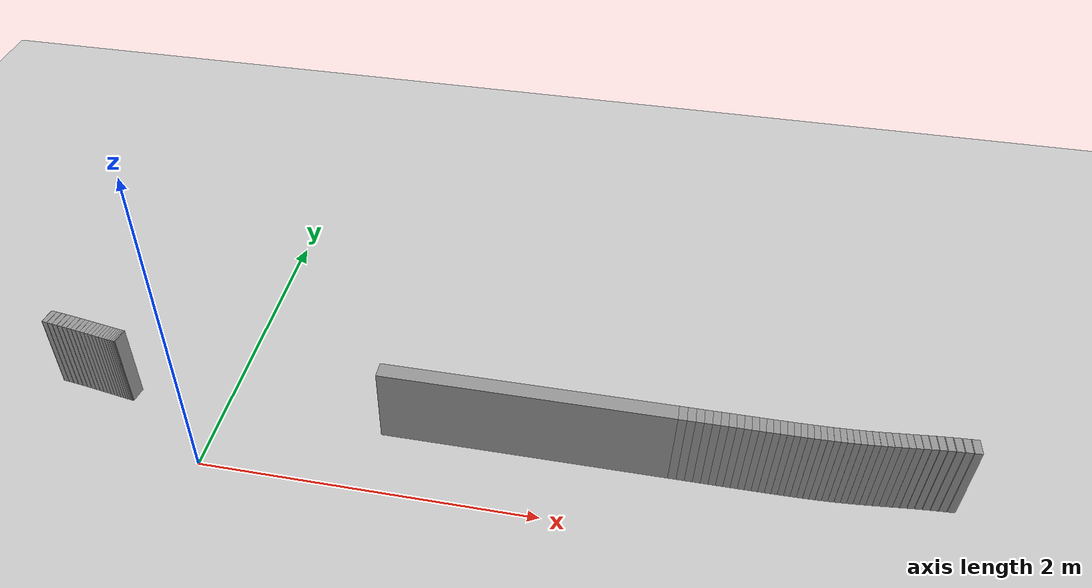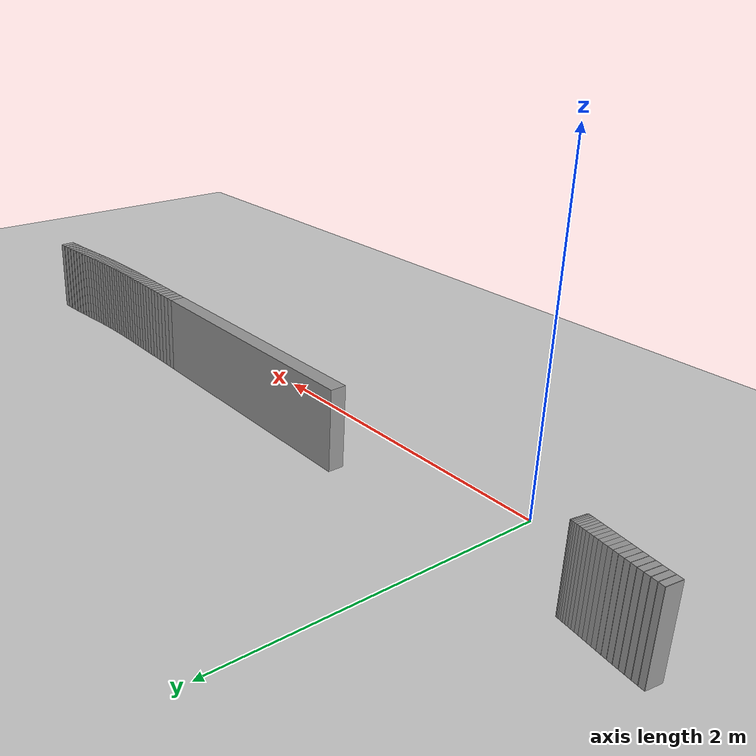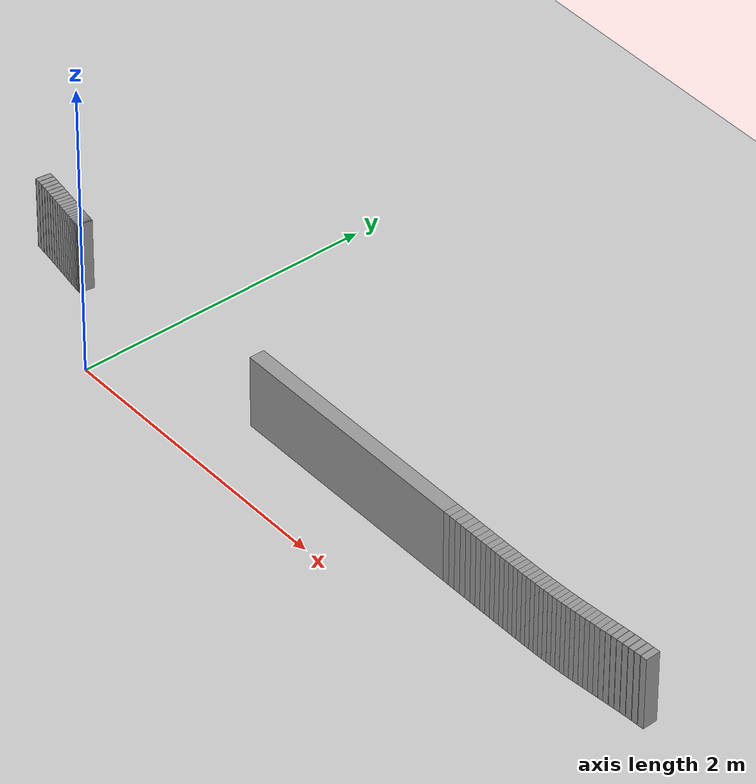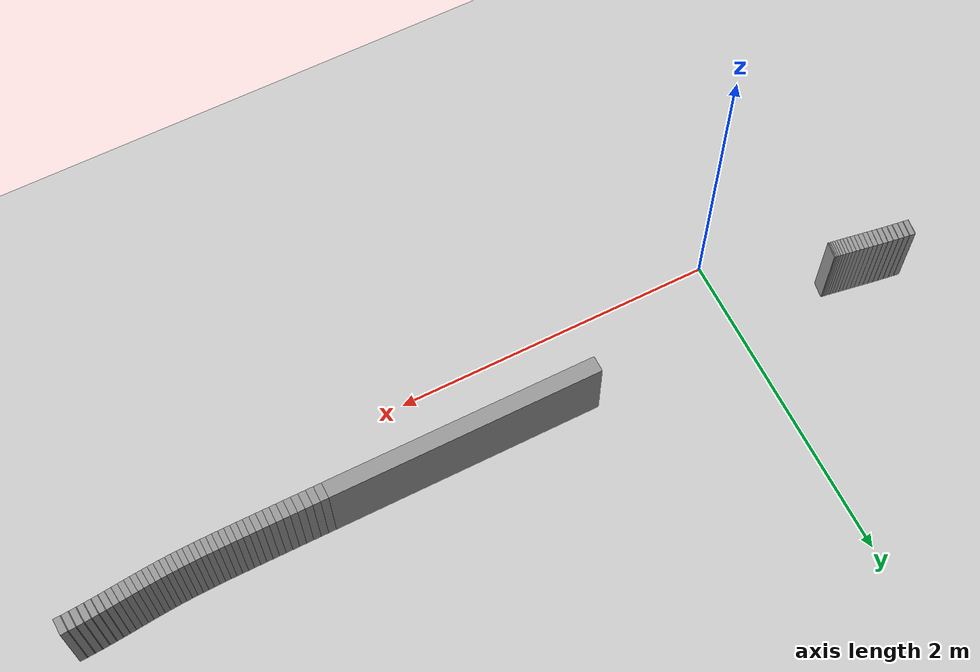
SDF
<sdf version="1.6">
 <world name="default">
  <include><uri>model://ground_plane</uri></include>
  <include><uri>model://sun</uri></include>
  <model name="wall_0_outward">
   <static>true</static>
   <link name="link">
    <collision name="collision">
     <geometry><box><size>1.6948364721734805 0.1 0.5</size></box></geometry>
    </collision>
    <visual name="visual">
     <geometry><box><size>1.6948364721734805 0.1 0.5</size></box></geometry>
     <material>
      <script><uri>file://media/materials/scripts/gazebo.material</uri><name>Gazebo/Gray</name></script>
     </material>
    </visual>
   </link>
   <pose>1.8243392985711648 0.475 0.25 0 0 0.0</pose>
  </model>
  <model name="wall_1_outward">
   <static>true</static>
   <link name="link">
    <collision name="collision">
     <geometry><box><size>0.04806440217080961 0.1 0.5</size></box></geometry>
    </collision>
    <visual name="visual">
     <geometry><box><size>0.04806440217080961 0.1 0.5</size></box></geometry>
     <material>
      <script><uri>file://media/materials/scripts/gazebo.material</uri><name>Gazebo/Gray</name></script>
     </material>
    </visual>
   </link>
   <pose>2.695789735742122 0.47500023897134025 0.25 0 0 9.943797465686413e-06</pose>
  </model>
  <model name="wall_2_outward">
   <static>true</static>
   <link name="link">
    <collision name="collision">
     <geometry><box><size>0.04688702898116273 0.1 0.5</size></box></geometry>
    </collision>
    <visual name="visual">
     <geometry><box><size>0.04688702898116273 0.1 0.5</size></box></geometry>
     <material>
      <script><uri>file://media/materials/scripts/gazebo.material</uri><name>Gazebo/Gray</name></script>
     </material>
    </visual>
   </link>
   <pose>2.743265451313178 0.4750008968067251 0.25 0 0 1.78669475849483e-05</pose>
  </model>
  <model name="wall_3_outward">
   <static>true</static>
   <link name="link">
    <collision name="collision">
     <geometry><box><size>0.04574440428487137 0.1 0.5</size></box></geometry>
    </collision>
    <visual name="visual">
     <geometry><box><size>0.04574440428487137 0.1 0.5</size></box></geometry>
     <material>
      <script><uri>file://media/materials/scripts/gazebo.material</uri><name>Gazebo/Gray</name></script>
     </material>
    </visual>
   </link>
   <pose>2.7895811679311424 0.4750020349709023 0.25 0 0 3.1448661056683624e-05</pose>
  </model>
  <model name="wall_4_outward">
   <static>true</static>
   <link name="link">
    <collision name="collision">
     <geometry><box><size>0.04463535169733621 0.1 0.5</size></box></geometry>
    </collision>
    <visual name="visual">
     <geometry><box><size>0.04463535169733621 0.1 0.5</size></box></geometry>
     <material>
      <script><uri>file://media/materials/scripts/gazebo.material</uri><name>Gazebo/Gray</name></script>
     </material>
    </visual>
   </link>
   <pose>2.834771045878127 0.4750039644063491 0.25 0 0 5.4223178207318726e-05</pose>
  </model>
  <model name="wall_5_outward">
   <static>true</static>
   <link name="link">
    <collision name="collision">
     <geometry><box><size>0.04356462694553616 0.1 0.5</size></box></geometry>
    </collision>
    <visual name="visual">
     <geometry><box><size>0.04356462694553616 0.1 0.5</size></box></geometry>
     <material>
      <script><uri>file://media/materials/scripts/gazebo.material</uri><name>Gazebo/Gray</name></script>
     </material>
    </visual>
   </link>
   <pose>2.8788710350522493 0.4750074080070009 0.25 0 0 0.00010253572671945705</pose>
  </model>
  <model name="wall_6_outward">
   <static>true</static>
   <link name="link">
    <collision name="collision">
     <geometry><box><size>0.04253340131051369 0.1 0.5</size></box></geometry>
    </collision>
    <visual name="visual">
     <geometry><box><size>0.04253340131051369 0.1 0.5</size></box></geometry>
     <material>
      <script><uri>file://media/materials/scripts/gazebo.material</uri><name>Gazebo/Gray</name></script>
     </material>
    </visual>
   </link>
   <pose>2.9219200487543553 0.47501328091075756 0.25 0 0 0.00017113319530774783</pose>
  </model>
  <model name="wall_7_outward">
   <static>true</static>
   <link name="link">
    <collision name="collision">
     <geometry><box><size>0.04153998504033929 0.1 0.5</size></box></geometry>
    </collision>
    <visual name="visual">
     <geometry><box><size>0.04153998504033929 0.1 0.5</size></box></geometry>
     <material>
      <script><uri>file://media/materials/scripts/gazebo.material</uri><name>Gazebo/Gray</name></script>
     </material>
    </visual>
   </link>
   <pose>2.963956740804873 0.47502273348463075 0.25 0 0 0.00027988144552377407</pose>
  </model>
  <model name="wall_8_outward">
   <static>true</static>
   <link name="link">
    <collision name="collision">
     <geometry><box><size>0.04058826902087327 0.1 0.5</size></box></geometry>
    </collision>
    <visual name="visual">
     <geometry><box><size>0.04058826902087327 0.1 0.5</size></box></geometry>
     <material>
      <script><uri>file://media/materials/scripts/gazebo.material</uri><name>Gazebo/Gray</name></script>
     </material>
    </visual>
   </link>
   <pose>3.0050208649814865 0.4750376471853254 0.25 0 0 0.0004484332919322523</pose>
  </model>
  <model name="wall_9_outward">
   <static>true</static>
   <link name="link">
    <collision name="collision">
     <geometry><box><size>0.03968564509313034 0.1 0.5</size></box></geometry>
    </collision>
    <visual name="visual">
     <geometry><box><size>0.03968564509313034 0.1 0.5</size></box></geometry>
     <material>
      <script><uri>file://media/materials/scripts/gazebo.material</uri><name>Gazebo/Gray</name></script>
     </material>
    </visual>
   </link>
   <pose>3.0451578149155183 0.475060949903339 0.25 0 0 0.0007157325502692343</pose>
  </model>
  <model name="wall_10_outward">
   <static>true</static>
   <link name="link">
    <collision name="collision">
     <geometry><box><size>0.038840450173505875 0.1 0.5</size></box></geometry>
    </collision>
    <visual name="visual">
     <geometry><box><size>0.038840450173505875 0.1 0.5</size></box></geometry>
     <material>
      <script><uri>file://media/materials/scripts/gazebo.material</uri><name>Gazebo/Gray</name></script>
     </material>
    </visual>
   </link>
   <pose>3.0844208456576423 0.475096568310334 0.25 0 0 0.0011027811710174141</pose>
  </model>
  <model name="wall_11_outward">
   <static>true</static>
   <link name="link">
    <collision name="collision">
     <geometry><box><size>0.038055004006341736 0.1 0.5</size></box></geometry>
    </collision>
    <visual name="visual">
     <geometry><box><size>0.038055004006341736 0.1 0.5</size></box></geometry>
     <material>
      <script><uri>file://media/materials/scripts/gazebo.material</uri><name>Gazebo/Gray</name></script>
     </material>
    </visual>
   </link>
   <pose>3.122868534603403 0.4751496420224396 0.25 0 0 0.0016637744925169177</pose>
  </model>
  <model name="wall_12_outward">
   <static>true</static>
   <link name="link">
    <collision name="collision">
     <geometry><box><size>0.037338345144804795 0.1 0.5</size></box></geometry>
    </collision>
    <visual name="visual">
     <geometry><box><size>0.037338345144804795 0.1 0.5</size></box></geometry>
     <material>
      <script><uri>file://media/materials/scripts/gazebo.material</uri><name>Gazebo/Gray</name></script>
     </material>
    </visual>
   </link>
   <pose>3.1605651264879793 0.47522717125795005 0.25 0 0 0.0024570892794366014</pose>
  </model>
  <model name="wall_13_outward">
   <static>true</static>
   <link name="link">
    <collision name="collision">
     <geometry><box><size>0.03669572196433584 0.1 0.5</size></box></geometry>
    </collision>
    <visual name="visual">
     <geometry><box><size>0.03669572196433584 0.1 0.5</size></box></geometry>
     <material>
      <script><uri>file://media/materials/scripts/gazebo.material</uri><name>Gazebo/Gray</name></script>
     </material>
    </visual>
   </link>
   <pose>3.197581988004242 0.47533819707425495 0.25 0 0 0.003551050210883896</pose>
  </model>
  <model name="wall_14_outward">
   <static>true</static>
   <link name="link">
    <collision name="collision">
     <geometry><box><size>0.03612931523930584 0.1 0.5</size></box></geometry>
    </collision>
    <visual name="visual">
     <geometry><box><size>0.03612931523930584 0.1 0.5</size></box></geometry>
     <material>
      <script><uri>file://media/materials/scripts/gazebo.material</uri><name>Gazebo/Gray</name></script>
     </material>
    </visual>
   </link>
   <pose>3.2339941631506752 0.4754940661472298 0.25 0 0 0.00502170688623392</pose>
  </model>
  <model name="wall_15_outward">
   <static>true</static>
   <link name="link">
    <collision name="collision">
     <geometry><box><size>0.035642311914681014 0.1 0.5</size></box></geometry>
    </collision>
    <visual name="visual">
     <geometry><box><size>0.035642311914681014 0.1 0.5</size></box></geometry>
     <material>
      <script><uri>file://media/materials/scripts/gazebo.material</uri><name>Gazebo/Gray</name></script>
     </material>
    </visual>
   </link>
   <pose>3.2698793187602915 0.47570860747160393 0.25 0 0 0.006948330779103806</pose>
  </model>
  <model name="wall_16_outward">
   <static>true</static>
   <link name="link">
    <collision name="collision">
     <geometry><box><size>0.03523270988299887 0.1 0.5</size></box></geometry>
    </collision>
    <visual name="visual">
     <geometry><box><size>0.03523270988299887 0.1 0.5</size></box></geometry>
     <material>
      <script><uri>file://media/materials/scripts/gazebo.material</uri><name>Gazebo/Gray</name></script>
     </material>
    </visual>
   </link>
   <pose>3.3053156197371765 0.4759981784289007 0.25 0 0 0.009408706465386003</pose>
  </model>
  <model name="wall_17_outward">
   <static>true</static>
   <link name="link">
    <collision name="collision">
     <geometry><box><size>0.03489780617447412 0.1 0.5</size></box></geometry>
    </collision>
    <visual name="visual">
     <geometry><box><size>0.03489780617447412 0.1 0.5</size></box></geometry>
     <material>
      <script><uri>file://media/materials/scripts/gazebo.material</uri><name>Gazebo/Gray</name></script>
     </material>
    </visual>
   </link>
   <pose>3.3403787408739563 0.4763815471532887 0.25 0 0 0.012472400040113872</pose>
  </model>
  <model name="wall_18_outward">
   <static>true</static>
   <link name="link">
    <collision name="collision">
     <geometry><box><size>0.03463362284369708 0.1 0.5</size></box></geometry>
    </collision>
    <visual name="visual">
     <geometry><box><size>0.03463362284369708 0.1 0.5</size></box></geometry>
     <material>
      <script><uri>file://media/materials/scripts/gazebo.material</uri><name>Gazebo/Gray</name></script>
     </material>
    </visual>
   </link>
   <pose>3.375140827617702 0.476879588701131 0.25 0 0 0.016194075266413022</pose>
  </model>
  <model name="wall_19_outward">
   <static>true</static>
   <link name="link">
    <collision name="collision">
     <geometry><box><size>0.03443286003245522 0.1 0.5</size></box></geometry>
    </collision>
    <visual name="visual">
     <geometry><box><size>0.03443286003245522 0.1 0.5</size></box></geometry>
     <material>
      <script><uri>file://media/materials/scripts/gazebo.material</uri><name>Gazebo/Gray</name></script>
     </material>
    </visual>
   </link>
   <pose>3.4096681426535262 0.47751478265917147 0.25 0 0 0.020608313145628606</pose>
  </model>
  <model name="wall_20_outward">
   <static>true</static>
   <link name="link">
    <collision name="collision">
     <geometry><box><size>0.034286452296005715 0.1 0.5</size></box></geometry>
    </collision>
    <visual name="visual">
     <geometry><box><size>0.034286452296005715 0.1 0.5</size></box></geometry>
     <material>
      <script><uri>file://media/materials/scripts/gazebo.material</uri><name>Gazebo/Gray</name></script>
     </material>
    </visual>
   </link>
   <pose>3.4440184708331056 0.47831052041515587 0.25 0 0 0.02572502543572336</pose>
  </model>
  <model name="wall_21_outward">
   <static>true</static>
   <link name="link">
    <collision name="collision">
     <geometry><box><size>0.034186327868454415 0.1 0.5</size></box></geometry>
    </collision>
    <visual name="visual">
     <geometry><box><size>0.034186327868454415 0.1 0.5</size></box></geometry>
     <material>
      <script><uri>file://media/materials/scripts/gazebo.material</uri><name>Gazebo/Gray</name></script>
     </material>
    </visual>
   </link>
   <pose>3.4782406956897374 0.4792902523481356 0.25 0 0 0.03152487724142422</pose>
  </model>
  <model name="wall_22_outward">
   <static>true</static>
   <link name="link">
    <collision name="collision">
     <geometry><box><size>0.03412545916503974 0.1 0.5</size></box></geometry>
    </collision>
    <visual name="visual">
     <geometry><box><size>0.03412545916503974 0.1 0.5</size></box></geometry>
     <material>
      <script><uri>file://media/materials/scripts/gazebo.material</uri><name>Gazebo/Gray</name></script>
     </material>
    </visual>
   </link>
   <pose>3.512375806759146 0.48047650314665147 0.25 0 0 0.03795615728900034</pose>
  </model>
  <model name="wall_23_outward">
   <static>true</static>
   <link name="link">
    <collision name="collision">
     <geometry><box><size>0.0340971538375391 0.1 0.5</size></box></geometry>
    </collision>
    <visual name="visual">
     <geometry><box><size>0.0340971538375391 0.1 0.5</size></box></geometry>
     <material>
      <script><uri>file://media/materials/scripts/gazebo.material</uri><name>Gazebo/Gray</name></script>
     </material>
    </visual>
   </link>
   <pose>3.5464576144063216 0.48188981427284044 0.25 0 0 0.04493564275734864</pose>
  </model>
  <model name="wall_24_outward">
   <static>true</static>
   <link name="link">
    <collision name="collision">
     <geometry><box><size>0.034100720145534585 0.1 0.5</size></box></geometry>
    </collision>
    <visual name="visual">
     <geometry><box><size>0.034100720145534585 0.1 0.5</size></box></geometry>
     <material>
      <script><uri>file://media/materials/scripts/gazebo.material</uri><name>Gazebo/Gray</name></script>
     </material>
    </visual>
   </link>
   <pose>3.5805159895737333 0.4835477144476865 0.25 0 0 0.05234356841099349</pose>
  </model>
  <model name="wall_25_outward">
   <static>true</static>
   <link name="link">
    <collision name="collision">
     <geometry><box><size>0.034139872349267325 0.1 0.5</size></box></geometry>
    </collision>
    <visual name="visual">
     <geometry><box><size>0.034139872349267325 0.1 0.5</size></box></geometry>
     <material>
      <script><uri>file://media/materials/scripts/gazebo.material</uri><name>Gazebo/Gray</name></script>
     </material>
    </visual>
   </link>
   <pose>3.6145821914243643 0.48546378737885076 0.25 0 0 0.06002476435542967</pose>
  </model>
  <model name="wall_26_outward">
   <static>true</static>
   <link name="link">
    <collision name="collision">
     <geometry><box><size>0.03422515983468342 0.1 0.5</size></box></geometry>
    </collision>
    <visual name="visual">
     <geometry><box><size>0.03422515983468342 0.1 0.5</size></box></geometry>
     <material>
      <script><uri>file://media/materials/scripts/gazebo.material</uri><name>Gazebo/Gray</name></script>
     </material>
    </visual>
   </link>
   <pose>3.648694664445913 0.48764690287528817 0.25 0 0 0.06778638493182666</pose>
  </model>
  <model name="wall_27_outward">
   <static>true</static>
   <link name="link">
    <collision name="collision">
     <geometry><box><size>0.03437356803132213 0.1 0.5</size></box></geometry>
    </collision>
    <visual name="visual">
     <geometry><box><size>0.03437356803132213 0.1 0.5</size></box></geometry>
     <material>
      <script><uri>file://media/materials/scripts/gazebo.material</uri><name>Gazebo/Gray</name></script>
     </material>
    </visual>
   </link>
   <pose>3.6829058958852112 0.4901006676845532 0.25 0 0 0.07539982854421307</pose>
  </model>
  <model name="wall_28_outward">
   <static>true</static>
   <link name="link">
    <collision name="collision">
     <geometry><box><size>0.03460850290986994 0.1 0.5</size></box></geometry>
    </collision>
    <visual name="visual">
     <geometry><box><size>0.03460850290986994 0.1 0.5</size></box></geometry>
     <material>
      <script><uri>file://media/materials/scripts/gazebo.material</uri><name>Gazebo/Gray</name></script>
     </material>
    </visual>
   </link>
   <pose>3.7172891024407337 0.49282302286654733 0.25 0 0 0.08259975337286665</pose>
  </model>
  <model name="wall_29_outward">
   <static>true</static>
   <link name="link">
    <collision name="collision">
     <geometry><box><size>0.03495509443923935 0.1 0.5</size></box></geometry>
    </collision>
    <visual name="visual">
     <geometry><box><size>0.03495509443923935 0.1 0.5</size></box></geometry>
     <material>
      <script><uri>file://media/materials/scripts/gazebo.material</uri><name>Gazebo/Gray</name></script>
     </material>
    </visual>
   </link>
   <pose>3.7519425812148284 0.49580583481442153 0.25 0 0 0.08909540351266997</pose>
  </model>
  <model name="wall_30_outward">
   <static>true</static>
   <link name="link">
    <collision name="collision">
     <geometry><box><size>0.03543955042557566 0.1 0.5</size></box></geometry>
    </collision>
    <visual name="visual">
     <geometry><box><size>0.03543955042557566 0.1 0.5</size></box></geometry>
     <material>
      <script><uri>file://media/materials/scripts/gazebo.material</uri><name>Gazebo/Gray</name></script>
     </material>
    </visual>
   </link>
   <pose>3.7869913896969716 0.4990343365524339 0.25 0 0 0.09457734254188264</pose>
  </model>
  <model name="wall_31_outward">
   <static>true</static>
   <link name="link">
    <collision name="collision">
     <geometry><box><size>0.03608200188614192 0.1 0.5</size></box></geometry>
    </collision>
    <visual name="visual">
     <geometry><box><size>0.03608200188614192 0.1 0.5</size></box></geometry>
     <material>
      <script><uri>file://media/materials/scripts/gazebo.material</uri><name>Gazebo/Gray</name></script>
     </material>
    </visual>
   </link>
   <pose>3.82258510230046 0.502486176503101 0.25 0 0 0.09873848366980394</pose>
  </model>
  <model name="wall_32_outward">
   <static>true</static>
   <link name="link">
    <collision name="collision">
     <geometry><box><size>0.036891321217791206 0.1 0.5</size></box></geometry>
    </collision>
    <visual name="visual">
     <geometry><box><size>0.036891321217791206 0.1 0.5</size></box></geometry>
     <material>
      <script><uri>file://media/materials/scripts/gazebo.material</uri><name>Gazebo/Gray</name></script>
     </material>
    </visual>
   </link>
   <pose>3.85888933190925 0.5061299658995165 0.25 0 0 0.10129945816380015</pose>
  </model>
  <model name="wall_33_outward">
   <static>true</static>
   <link name="link">
    <collision name="collision">
     <geometry><box><size>0.037561971896658074 0.1 0.5</size></box></geometry>
    </collision>
    <visual name="visual">
     <geometry><box><size>0.037561971896658074 0.1 0.5</size></box></geometry>
     <material>
      <script><uri>file://media/materials/scripts/gazebo.material</uri><name>Gazebo/Gray</name></script>
     </material>
    </visual>
   </link>
   <pose>3.895923719561498 0.5099084778895424 0.25 0 0 0.10204442861603125</pose>
  </model>
  <model name="wall_34_outward">
   <static>true</static>
   <link name="link">
    <collision name="collision">
     <geometry><box><size>0.0006005570851022729 0.1 0.5</size></box></geometry>
    </collision>
    <visual name="visual">
     <geometry><box><size>0.0006005570851022729 0.1 0.5</size></box></geometry>
     <material>
      <script><uri>file://media/materials/scripts/gazebo.material</uri><name>Gazebo/Gray</name></script>
     </material>
    </visual>
   </link>
   <pose>3.9149057413202515 0.5118520577019349 0.25 0 0 0.10144387149461366</pose>
  </model>
  <model name="wall_35_outward">
   <static>true</static>
   <link name="link">
    <collision name="collision">
     <geometry><box><size>0.037887833833630515 0.1 0.5</size></box></geometry>
    </collision>
    <visual name="visual">
     <geometry><box><size>0.037887833833630515 0.1 0.5</size></box></geometry>
     <material>
      <script><uri>file://media/materials/scripts/gazebo.material</uri><name>Gazebo/Gray</name></script>
     </material>
    </visual>
   </link>
   <pose>3.9340521507553032 0.5137895980426772 0.25 0 0 0.10084331437362348</pose>
  </model>
  <model name="wall_36_outward">
   <static>true</static>
   <link name="link">
    <collision name="collision">
     <geometry><box><size>0.001574672944620505 0.1 0.5</size></box></geometry>
    </collision>
    <visual name="visual">
     <geometry><box><size>0.001574672944620505 0.1 0.5</size></box></geometry>
     <material>
      <script><uri>file://media/materials/scripts/gazebo.material</uri><name>Gazebo/Gray</name></script>
     </material>
    </visual>
   </link>
   <pose>3.9536832857318966 0.5157747587044049 0.25 0 0 0.09926864077830745</pose>
  </model>
  <model name="wall_37_outward">
   <static>true</static>
   <link name="link">
    <collision name="collision">
     <geometry><box><size>0.038164973088641155 0.1 0.5</size></box></geometry>
    </collision>
    <visual name="visual">
     <geometry><box><size>0.038164973088641155 0.1 0.5</size></box></geometry>
     <material>
      <script><uri>file://media/materials/scripts/gazebo.material</uri><name>Gazebo/Gray</name></script>
     </material>
    </visual>
   </link>
   <pose>3.9734582423387694 0.5177140680284287 0.25 0 0 0.09769396718286316</pose>
  </model>
  <model name="wall_38_outward">
   <static>true</static>
   <link name="link">
    <collision name="collision">
     <geometry><box><size>0.0024850264246705847 0.1 0.5</size></box></geometry>
    </collision>
    <visual name="visual">
     <geometry><box><size>0.0024850264246705847 0.1 0.5</size></box></geometry>
     <material>
      <script><uri>file://media/materials/scripts/gazebo.material</uri><name>Gazebo/Gray</name></script>
     </material>
    </visual>
   </link>
   <pose>3.9936866245333675 0.5196934675530118 0.25 0 0 0.09520893820050075</pose>
  </model>
  <model name="wall_39_outward">
   <static>true</static>
   <link name="link">
    <collision name="collision">
     <geometry><box><size>0.038604670412857596 0.1 0.5</size></box></geometry>
    </collision>
    <visual name="visual">
     <geometry><box><size>0.038604670412857596 0.1 0.5</size></box></geometry>
     <material>
      <script><uri>file://media/materials/scripts/gazebo.material</uri><name>Gazebo/Gray</name></script>
     </material>
    </visual>
   </link>
   <pose>4.014142927039951 0.5215988116696546 0.25 0 0 0.09272390921820284</pose>
  </model>
  <model name="wall_40_outward">
   <static>true</static>
   <link name="link">
    <collision name="collision">
     <geometry><box><size>0.0032658077204588136 0.1 0.5</size></box></geometry>
    </collision>
    <visual name="visual">
     <geometry><box><size>0.0032658077204588136 0.1 0.5</size></box></geometry>
     <material>
      <script><uri>file://media/materials/scripts/gazebo.material</uri><name>Gazebo/Gray</name></script>
     </material>
    </visual>
   </link>
   <pose>4.034988717967316 0.5235319177778179 0.25 0 0 0.08945809569245979</pose>
  </model>
  <model name="wall_41_outward">
   <static>true</static>
   <link name="link">
    <collision name="collision">
     <geometry><box><size>0.0392243842283836 0.1 0.5</size></box></geometry>
    </collision>
    <visual name="visual">
     <geometry><box><size>0.0392243842283836 0.1 0.5</size></box></geometry>
     <material>
      <script><uri>file://media/materials/scripts/gazebo.material</uri><name>Gazebo/Gray</name></script>
     </material>
    </visual>
   </link>
   <pose>4.056154478965215 0.5253661268118535 0.25 0 0 0.08619228216673648</pose>
  </model>
  <model name="wall_42_outward">
   <static>true</static>
   <link name="link">
    <collision name="collision">
     <geometry><box><size>0.003864570013660513 0.1 0.5</size></box></geometry>
    </collision>
    <visual name="visual">
     <geometry><box><size>0.003864570013660513 0.1 0.5</size></box></geometry>
     <material>
      <script><uri>file://media/materials/scripts/gazebo.material</uri><name>Gazebo/Gray</name></script>
     </material>
    </visual>
   </link>
   <pose>4.077619605943147 0.5272133550758269 0.25 0 0 0.08232770253353343</pose>
  </model>
  <model name="wall_43_outward">
   <static>true</static>
   <link name="link">
    <collision name="collision">
     <geometry><box><size>0.040033057722133523 0.1 0.5</size></box></geometry>
    </collision>
    <visual name="visual">
     <geometry><box><size>0.040033057722133523 0.1 0.5</size></box></geometry>
     <material>
      <script><uri>file://media/materials/scripts/gazebo.material</uri><name>Gazebo/Gray</name></script>
     </material>
    </visual>
   </link>
   <pose>4.099500291247745 0.5289412043631978 0.25 0 0 0.07846312290029642</pose>
  </model>
  <model name="wall_44_outward">
   <static>true</static>
   <link name="link">
    <collision name="collision">
     <geometry><box><size>0.004248374001215754 0.1 0.5</size></box></geometry>
    </collision>
    <visual name="visual">
     <geometry><box><size>0.004248374001215754 0.1 0.5</size></box></geometry>
     <material>
      <script><uri>file://media/materials/scripts/gazebo.material</uri><name>Gazebo/Gray</name></script>
     </material>
    </visual>
   </link>
   <pose>4.121573576075026 0.530667654011602 0.25 0 0 0.074214736119343</pose>
  </model>
  <model name="wall_45_outward">
   <static>true</static>
   <link name="link">
    <collision name="collision">
     <geometry><box><size>0.041028519492309956 0.1 0.5</size></box></geometry>
    </collision>
    <visual name="visual">
     <geometry><box><size>0.041028519492309956 0.1 0.5</size></box></geometry>
     <material>
      <script><uri>file://media/materials/scripts/gazebo.material</uri><name>Gazebo/Gray</name></script>
     </material>
    </visual>
   </link>
   <pose>4.14415598453329 0.5322592924237386 0.25 0 0 0.06996634933847398</pose>
  </model>
  <model name="wall_46_outward">
   <static>true</static>
   <link name="link">
    <collision name="collision">
     <geometry><box><size>0.004411854806706993 0.1 0.5</size></box></geometry>
    </collision>
    <visual name="visual">
     <geometry><box><size>0.004411854806706993 0.1 0.5</size></box></geometry>
     <material>
      <script><uri>file://media/materials/scripts/gazebo.material</uri><name>Gazebo/Gray</name></script>
     </material>
    </visual>
   </link>
   <pose>4.166821242369256 0.5338379344062234 0.25 0 0 0.06555448021924608</pose>
  </model>
  <model name="wall_47_outward">
   <static>true</static>
   <link name="link">
    <collision name="collision">
     <geometry><box><size>0.042199500776225474 0.1 0.5</size></box></geometry>
    </collision>
    <visual name="visual">
     <geometry><box><size>0.042199500776225474 0.1 0.5</size></box></geometry>
     <material>
      <script><uri>file://media/materials/scripts/gazebo.material</uri><name>Gazebo/Gray</name></script>
     </material>
    </visual>
   </link>
   <pose>4.190082754425479 0.5352717294436733 0.25 0 0 0.06114261110001481</pose>
  </model>
  <model name="wall_48_outward">
   <static>true</static>
   <link name="link">
    <collision name="collision">
     <geometry><box><size>0.004371286411636631 0.1 0.5</size></box></geometry>
    </collision>
    <visual name="visual">
     <geometry><box><size>0.004371286411636631 0.1 0.5</size></box></geometry>
     <material>
      <script><uri>file://media/materials/scripts/gazebo.material</uri><name>Gazebo/Gray</name></script>
     </material>
    </visual>
   </link>
   <pose>4.213325199253861 0.536685034795831 0.25 0 0 0.056771310767039264</pose>
  </model>
  <model name="wall_49_outward">
   <static>true</static>
   <link name="link">
    <collision name="collision">
     <geometry><box><size>0.04352386298376981 0.1 0.5</size></box></geometry>
    </collision>
    <visual name="visual">
     <geometry><box><size>0.04352386298376981 0.1 0.5</size></box></geometry>
     <material>
      <script><uri>file://media/materials/scripts/gazebo.material</uri><name>Gazebo/Gray</name></script>
     </material>
    </visual>
   </link>
   <pose>4.237239383056512 0.5379488536493322 0.25 0 0 0.052400010434110106</pose>
  </model>
  <model name="wall_1055_outward">
   <static>true</static>
   <link name="link">
    <collision name="collision">
     <geometry><box><size>0.0026951291199947074 0.1 0.5</size></box></geometry>
    </collision>
    <visual name="visual">
     <geometry><box><size>0.0026951291199947074 0.1 0.5</size></box></geometry>
     <material>
      <script><uri>file://media/materials/scripts/gazebo.material</uri><name>Gazebo/Gray</name></script>
     </material>
    </visual>
   </link>
   <pose>-1.0782953923392031 0.5240205571543137 0.25 0 0 -0.13116040874243973</pose>
  </model>
  <model name="wall_1056_outward">
   <static>true</static>
   <link name="link">
    <collision name="collision">
     <geometry><box><size>0.032512865958297735 0.1 0.5</size></box></geometry>
    </collision>
    <visual name="visual">
     <geometry><box><size>0.032512865958297735 0.1 0.5</size></box></geometry>
     <material>
      <script><uri>file://media/materials/scripts/gazebo.material</uri><name>Gazebo/Gray</name></script>
     </material>
    </visual>
   </link>
   <pose>-1.0608483877258614 0.5216747949633336 0.25 0 0 -0.1338555411251899</pose>
  </model>
  <model name="wall_1057_outward">
   <static>true</static>
   <link name="link">
    <collision name="collision">
     <geometry><box><size>0.002815970713320135 0.1 0.5</size></box></geometry>
    </collision>
    <visual name="visual">
     <geometry><box><size>0.002815970713320135 0.1 0.5</size></box></geometry>
     <material>
      <script><uri>file://media/materials/scripts/gazebo.material</uri><name>Gazebo/Gray</name></script>
     </material>
    </visual>
   </link>
   <pose>-1.0433425173065523 0.5193134405843395 0.25 0 0 -0.13667151556014878</pose>
  </model>
  <model name="wall_1058_outward">
   <static>true</static>
   <link name="link">
    <collision name="collision">
     <geometry><box><size>0.032115994839323175 0.1 0.5</size></box></geometry>
    </collision>
    <visual name="visual">
     <geometry><box><size>0.032115994839323175 0.1 0.5</size></box></geometry>
     <material>
      <script><uri>file://media/materials/scripts/gazebo.material</uri><name>Gazebo/Gray</name></script>
     </material>
    </visual>
   </link>
   <pose>-1.0260456291979718 0.5168889742892755 0.25 0 0 -0.13948748999511643</pose>
  </model>
  <model name="wall_1059_outward">
   <static>true</static>
   <link name="link">
    <collision name="collision">
     <geometry><box><size>0.002800426744190948 0.1 0.5</size></box></geometry>
    </collision>
    <visual name="visual">
     <geometry><box><size>0.002800426744190948 0.1 0.5</size></box></geometry>
     <material>
      <script><uri>file://media/materials/scripts/gazebo.material</uri><name>Gazebo/Gray</name></script>
     </material>
    </visual>
   </link>
   <pose>-1.0087575339369865 0.5144577791175562 0.25 0 0 -0.14228792039966848</pose>
  </model>
  <model name="wall_1060_outward">
   <static>true</static>
   <link name="link">
    <collision name="collision">
     <geometry><box><size>0.031692321006003006 0.1 0.5</size></box></geometry>
    </collision>
    <visual name="visual">
     <geometry><box><size>0.031692321006003006 0.1 0.5</size></box></geometry>
     <material>
      <script><uri>file://media/materials/scripts/gazebo.material</uri><name>Gazebo/Gray</name></script>
     </material>
    </visual>
   </link>
   <pose>-0.9916918038739342 0.5119681817108813 0.25 0 0 -0.14508835080420354</pose>
  </model>
  <model name="wall_1061_outward">
   <static>true</static>
   <link name="link">
    <collision name="collision">
     <geometry><box><size>0.0026570659626708034 0.1 0.5</size></box></geometry>
    </collision>
    <visual name="visual">
     <geometry><box><size>0.0026570659626708034 0.1 0.5</size></box></geometry>
     <material>
      <script><uri>file://media/materials/scripts/gazebo.material</uri><name>Gazebo/Gray</name></script>
     </material>
    </visual>
   </link>
   <pose>-0.9746980775657852 0.5094815748227223 0.25 0 0 -0.1477454198933837</pose>
  </model>
  <model name="wall_1062_outward">
   <static>true</static>
   <link name="link">
    <collision name="collision">
     <geometry><box><size>0.031231492496547844 0.1 0.5</size></box></geometry>
    </collision>
    <visual name="visual">
     <geometry><box><size>0.031231492496547844 0.1 0.5</size></box></geometry>
     <material>
      <script><uri>file://media/materials/scripts/gazebo.material</uri><name>Gazebo/Gray</name></script>
     </material>
    </visual>
   </link>
   <pose>-0.9579445605505088 0.5069462011298382 0.25 0 0 -0.15040248898252545</pose>
  </model>
  <model name="wall_1063_outward">
   <static>true</static>
   <link name="link">
    <collision name="collision">
     <geometry><box><size>0.002409016664333858 0.1 0.5</size></box></geometry>
    </collision>
    <visual name="visual">
     <geometry><box><size>0.002409016664333858 0.1 0.5</size></box></geometry>
     <material>
      <script><uri>file://media/materials/scripts/gazebo.material</uri><name>Gazebo/Gray</name></script>
     </material>
    </visual>
   </link>
   <pose>-0.9413146305683171 0.5044230515542206 0.25 0 0 -0.15281150797696075</pose>
  </model>
  <model name="wall_1064_outward">
   <static>true</static>
   <link name="link">
    <collision name="collision">
     <geometry><box><size>0.030721502163941535 0.1 0.5</size></box></geometry>
    </collision>
    <visual name="visual">
     <geometry><box><size>0.030721502163941535 0.1 0.5</size></box></geometry>
     <material>
      <script><uri>file://media/materials/scripts/gazebo.material</uri><name>Gazebo/Gray</name></script>
     </material>
    </visual>
   </link>
   <pose>-0.9249480824778267 0.5018649632671373 0.25 0 0 -0.15522052697133615</pose>
  </model>
  <model name="wall_1065_outward">
   <static>true</static>
   <link name="link">
    <collision name="collision">
     <geometry><box><size>0.0020673578289805757 0.1 0.5</size></box></geometry>
    </collision>
    <visual name="visual">
     <geometry><box><size>0.0020673578289805757 0.1 0.5</size></box></geometry>
     <material>
      <script><uri>file://media/materials/scripts/gazebo.material</uri><name>Gazebo/Gray</name></script>
     </material>
    </visual>
   </link>
   <pose>-0.9087510876985259 0.49932830657659777 0.25 0 0 -0.157287886272967</pose>
  </model>
  <model name="wall_1066_outward">
   <static>true</static>
   <link name="link">
    <collision name="collision">
     <geometry><box><size>0.030153193425626026 0.1 0.5</size></box></geometry>
    </collision>
    <visual name="visual">
     <geometry><box><size>0.030153193425626026 0.1 0.5</size></box></geometry>
     <material>
      <script><uri>file://media/materials/scripts/gazebo.material</uri><name>Gazebo/Gray</name></script>
     </material>
    </visual>
   </link>
   <pose>-0.8928445955777282 0.4967740116461813 0.25 0 0 -0.15935524557457845</pose>
  </model>
  <model name="wall_1067_outward">
   <static>true</static>
   <link name="link">
    <collision name="collision">
     <geometry><box><size>0.0016579055886717785 0.1 0.5</size></box></geometry>
    </collision>
    <visual name="visual">
     <geometry><box><size>0.0016579055886717785 0.1 0.5</size></box></geometry>
     <material>
      <script><uri>file://media/materials/scripts/gazebo.material</uri><name>Gazebo/Gray</name></script>
     </material>
    </visual>
   </link>
   <pose>-0.8771407917803259 0.4942487360047949 0.25 0 0 -0.16101315192276852</pose>
  </model>
  <model name="wall_1068_outward">
   <static>true</static>
   <link name="link">
    <collision name="collision">
     <geometry><box><size>0.029518033151605796 0.1 0.5</size></box></geometry>
    </collision>
    <visual name="visual">
     <geometry><box><size>0.029518033151605796 0.1 0.5</size></box></geometry>
     <material>
      <script><uri>file://media/materials/scripts/gazebo.material</uri><name>Gazebo/Gray</name></script>
     </material>
    </visual>
   </link>
   <pose>-0.8617583899925539 0.4917255493895274 0.25 0 0 -0.16267105827092632</pose>
  </model>
  <model name="wall_1069_outward">
   <static>true</static>
   <link name="link">
    <collision name="collision">
     <geometry><box><size>0.0012279781547518379 0.1 0.5</size></box></geometry>
    </collision>
    <visual name="visual">
     <geometry><box><size>0.0012279781547518379 0.1 0.5</size></box></geometry>
     <material>
      <script><uri>file://media/materials/scripts/gazebo.material</uri><name>Gazebo/Gray</name></script>
     </material>
    </visual>
   </link>
   <pose>-0.8465884580357579 0.4892350768291152 0.25 0 0 -0.1638990367342552</pose>
  </model>
  <model name="wall_1070_outward">
   <static>true</static>
   <link name="link">
    <collision name="collision">
     <geometry><box><size>0.028806113842152356 0.1 0.5</size></box></geometry>
    </collision>
    <visual name="visual">
     <geometry><box><size>0.028806113842152356 0.1 0.5</size></box></geometry>
     <material>
      <script><uri>file://media/materials/scripts/gazebo.material</uri><name>Gazebo/Gray</name></script>
     </material>
    </visual>
   </link>
   <pose>-0.8317755581546783 0.48676735433709517 0.25 0 0 -0.16512701519766387</pose>
  </model>
  <model name="wall_1071_outward">
   <static>true</static>
   <link name="link">
    <collision name="collision">
     <geometry><box><size>0.0007829347288886357 0.1 0.5</size></box></geometry>
    </collision>
    <visual name="visual">
     <geometry><box><size>0.0007829347288886357 0.1 0.5</size></box></geometry>
     <material>
      <script><uri>file://media/materials/scripts/gazebo.material</uri><name>Gazebo/Gray</name></script>
     </material>
    </visual>
   </link>
   <pose>-0.8171823271089342 0.48433516334456006 0.25 0 0 -0.16590995000653244</pose>
  </model>
  <model name="wall_1072_outward">
   <static>true</static>
   <link name="link">
    <collision name="collision">
     <geometry><box><size>0.028007906422563733 0.1 0.5</size></box></geometry>
    </collision>
    <visual name="visual">
     <geometry><box><size>0.028007906422563733 0.1 0.5</size></box></geometry>
     <material>
      <script><uri>file://media/materials/scripts/gazebo.material</uri><name>Gazebo/Gray</name></script>
     </material>
    </visual>
   </link>
   <pose>-0.8029863924246157 0.48194694881689526 0.25 0 0 -0.1666928848154197</pose>
  </model>
  <model name="wall_1073_outward">
   <static>true</static>
   <link name="link">
    <collision name="collision">
     <geometry><box><size>0.027459608094897798 0.1 0.5</size></box></geometry>
    </collision>
    <visual name="visual">
     <geometry><box><size>0.027459608094897798 0.1 0.5</size></box></geometry>
     <material>
      <script><uri>file://media/materials/scripts/gazebo.material</uri><name>Gazebo/Gray</name></script>
     </material>
    </visual>
   </link>
   <pose>-0.7756386983198278 0.4773355694852678 0.25 0 0 -0.16741224680542635</pose>
  </model>
  <model name="wall_1074_outward">
   <static>true</static>
   <link name="link">
    <collision name="collision">
     <geometry><box><size>0.02591559747879761 0.1 0.5</size></box></geometry>
    </collision>
    <visual name="visual">
     <geometry><box><size>0.02591559747879761 0.1 0.5</size></box></geometry>
     <material>
      <script><uri>file://media/materials/scripts/gazebo.material</uri><name>Gazebo/Gray</name></script>
     </material>
    </visual>
   </link>
   <pose>-0.7493241100794731 0.4728891565618993 0.25 0 0 -0.16736701085978478</pose>
  </model>
  <model name="wall_1075_outward">
   <static>true</static>
   <link name="link">
    <collision name="collision">
     <geometry><box><size>0.024493197476310194 0.1 0.5</size></box></geometry>
    </collision>
    <visual name="visual">
     <geometry><box><size>0.024493197476310194 0.1 0.5</size></box></geometry>
     <material>
      <script><uri>file://media/materials/scripts/gazebo.material</uri><name>Gazebo/Gray</name></script>
     </material>
    </visual>
   </link>
   <pose>-0.7244705302029463 0.4686985542359823 0.25 0 0 -0.16669495341131832</pose>
  </model>
  <model name="wall_1076_outward">
   <static>true</static>
   <link name="link">
    <collision name="collision">
     <geometry><box><size>0.022988008461165322 0.1 0.5</size></box></geometry>
    </collision>
    <visual name="visual">
     <geometry><box><size>0.022988008461165322 0.1 0.5</size></box></geometry>
     <material>
      <script><uri>file://media/materials/scripts/gazebo.material</uri><name>Gazebo/Gray</name></script>
     </material>
    </visual>
   </link>
   <pose>-0.7010568249851519 0.4647724299614994 0.25 0 0 -0.16554706666120628</pose>
  </model>
  <model name="wall_1077_outward">
   <static>true</static>
   <link name="link">
    <collision name="collision">
     <geometry><box><size>0.021380428350947393 0.1 0.5</size></box></geometry>
    </collision>
    <visual name="visual">
     <geometry><box><size>0.021380428350947393 0.1 0.5</size></box></geometry>
     <material>
      <script><uri>file://media/materials/scripts/gazebo.material</uri><name>Gazebo/Gray</name></script>
     </material>
    </visual>
   </link>
   <pose>-0.6791733044245639 0.4611322644776443 0.25 0 0 -0.16406632364208676</pose>
  </model>
  <model name="wall_1078_outward">
   <static>true</static>
   <link name="link">
    <collision name="collision">
     <geometry><box><size>0.019642523645482347 0.1 0.5</size></box></geometry>
    </collision>
    <visual name="visual">
     <geometry><box><size>0.019642523645482347 0.1 0.5</size></box></geometry>
     <material>
      <script><uri>file://media/materials/scripts/gazebo.material</uri><name>Gazebo/Gray</name></script>
     </material>
    </visual>
   </link>
   <pose>-0.6589346214782759 0.4577981872655936 0.25 0 0 -0.16240616631191387</pose>
  </model>
  <model name="wall_1079_outward">
   <static>true</static>
   <link name="link">
    <collision name="collision">
     <geometry><box><size>0.01775559236422592 0.1 0.5</size></box></geometry>
    </collision>
    <visual name="visual">
     <geometry><box><size>0.01775559236422592 0.1 0.5</size></box></geometry>
     <material>
      <script><uri>file://media/materials/scripts/gazebo.material</uri><name>Gazebo/Gray</name></script>
     </material>
    </visual>
   </link>
   <pose>-0.6404791581166824 0.45478980188636126 0.25 0 0 -0.16068003748775908</pose>
  </model>
  <model name="wall_1080_outward">
   <static>true</static>
   <link name="link">
    <collision name="collision">
     <geometry><box><size>0.0156915608305975 0.1 0.5</size></box></geometry>
    </collision>
    <visual name="visual">
     <geometry><box><size>0.0156915608305975 0.1 0.5</size></box></geometry>
     <material>
      <script><uri>file://media/materials/scripts/gazebo.material</uri><name>Gazebo/Gray</name></script>
     </material>
    </visual>
   </link>
   <pose>-0.6239689375434505 0.45212701380677794 0.25 0 0 -0.15902636511976379</pose>
  </model>
  <model name="wall_1081_outward">
   <static>true</static>
   <link name="link">
    <collision name="collision">
     <geometry><box><size>0.013448881118377203 0.1 0.5</size></box></geometry>
    </collision>
    <visual name="visual">
     <geometry><box><size>0.013448881118377203 0.1 0.5</size></box></geometry>
     <material>
      <script><uri>file://media/materials/scripts/gazebo.material</uri><name>Gazebo/Gray</name></script>
     </material>
    </visual>
   </link>
   <pose>-0.6095809235377152 0.44983000146518715 0.25 0 0 -0.15747779345650564</pose>
  </model>
  <model name="wall_1082_outward">
   <static>true</static>
   <link name="link">
    <collision name="collision">
     <geometry><box><size>0.011034348487029966 0.1 0.5</size></box></geometry>
    </collision>
    <visual name="visual">
     <geometry><box><size>0.011034348487029966 0.1 0.5</size></box></geometry>
     <material>
      <script><uri>file://media/materials/scripts/gazebo.material</uri><name>Gazebo/Gray</name></script>
     </material>
    </visual>
   </link>
   <pose>-0.597489661698962 0.4479172921618978 0.25 0 0 -0.1561721375608816</pose>
  </model>
  <model name="wall_1083_outward">
   <static>true</static>
   <link name="link">
    <collision name="collision">
     <geometry><box><size>0.008443417313784915 0.1 0.5</size></box></geometry>
    </collision>
    <visual name="visual">
     <geometry><box><size>0.008443417313784915 0.1 0.5</size></box></geometry>
     <material>
      <script><uri>file://media/materials/scripts/gazebo.material</uri><name>Gazebo/Gray</name></script>
     </material>
    </visual>
   </link>
   <pose>-0.5878686125706074 0.44640691870863025 0.25 0 0 -0.1551186681140998</pose>
  </model>
  <model name="wall_1084_outward">
   <static>true</static>
   <link name="link">
    <collision name="collision">
     <geometry><box><size>0.005715900634468067 0.1 0.5</size></box></geometry>
    </collision>
    <visual name="visual">
     <geometry><box><size>0.005715900634468067 0.1 0.5</size></box></geometry>
     <material>
      <script><uri>file://media/materials/scripts/gazebo.material</uri><name>Gazebo/Gray</name></script>
     </material>
    </visual>
   </link>
   <pose>-0.5808736180777903 0.44531530702612654 0.25 0 0 -0.1543477852904085</pose>
  </model>
  <model name="wall_1085_outward">
   <static>true</static>
   <link name="link">
    <collision name="collision">
     <geometry><box><size>0.0029246555180604456 0.1 0.5</size></box></geometry>
    </collision>
    <visual name="visual">
     <geometry><box><size>0.0029246555180604456 0.1 0.5</size></box></geometry>
     <material>
      <script><uri>file://media/materials/scripts/gazebo.material</uri><name>Gazebo/Gray</name></script>
     </material>
    </visual>
   </link>
   <pose>-0.5766045966153281 0.44465178797390603 0.25 0 0 -0.15388979335299158</pose>
  </model>
 </world>
</sdf>
